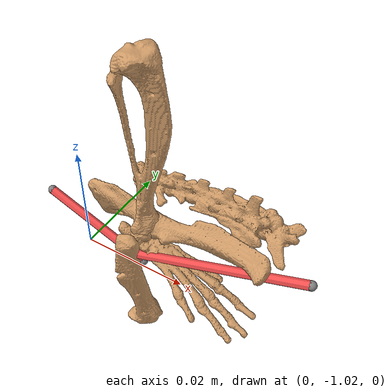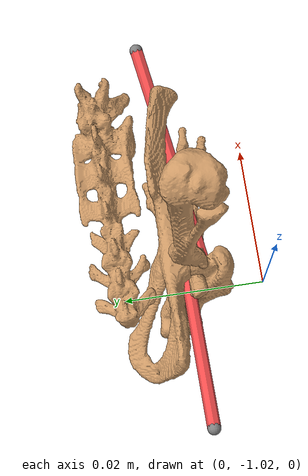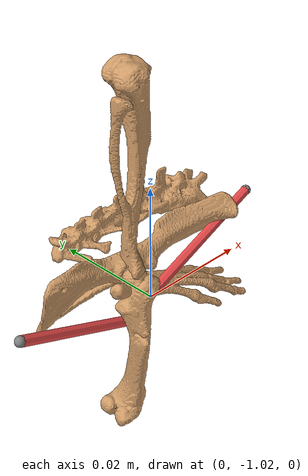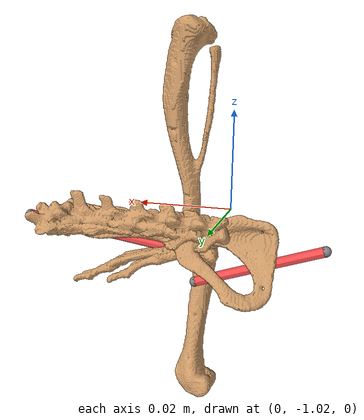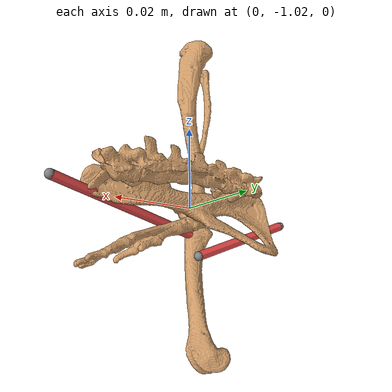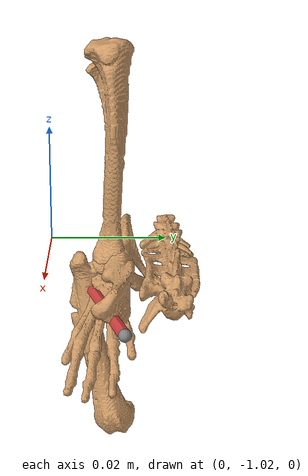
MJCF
<?xml version="1.0" encoding="utf-8"?>
<mujoco model="Rat Hindlimb Right">
  <compiler inertiafromgeom="auto" angle="radian" balanceinertia="true" boundmass="0.001" boundinertia="0.001">
    <lengthrange inttotal="50" useexisting="true"></lengthrange>
  </compiler>
  <default>
    <joint limited="true" damping="0.5" armature="0.1" stiffness="2"></joint>
    <geom rgba="0.8 0.6 .4 1" margin="0.001"></geom>
    <site size="0.001"></site>
    <tendon width="0.001" rgba=".95 .3 .3 1" limited="false"></tendon>
    <default class="muscle">
      <muscle ctrllimited="true" ctrlrange="0 1" ></muscle>
    </default>
    <default class="motor">
      <general gainprm="5 0 0 0 0 0 0 0 0 0"></general>
    </default>
  </default>
  <option timestep="0.000075"></option>
  <size njmax="1000" nconmax="400" nuser_jnt="1"></size>
  <worldbody>
    <camera name="fixed" pos="0.02 -1.2 -0.03" xyaxes="1 0 0 0 .1 1.1"/>
    <geom name="floor" pos="0 0 -0.5" size="10 10 0.125" type="plane" material="MatPlane" rgba="1 1 1 1" condim="3"></geom>
    <body name="spine" pos="       0       -1 6.12323e-17" quat="0.7071067811865475 0.7071067811865475 0.0 0.0">
      <light mode="trackcom" directional="false" pos="0 0 4.0" dir="0 0 -1"></light>
      <geom name="spine" type="mesh" mesh="spine"></geom>
      <inertial pos="       0        0        0" mass="0.12" fullinertia=" 4.8e-06  4.8e-06  4.8e-06        0        0        0"></inertial>
      <body name="pelvis" pos="   0.005   -0.003     0.01" quat="1.0 0.0 0.0 0.0">
        <geom name="pelvis" type="mesh" mesh="pelvis"></geom>
        <inertial pos="       0        0        0" mass="0.02" fullinertia="   4e-06  3.5e-06  3.5e-06        0        0        0"></inertial>

		<site name="Hip_Ext_Pelvis" pos="-0.024199251041167  -0.000933954385910  -0.000003638250253"></site>
        <site name="Hip_Flx_Pelvis" pos="0.034278843371281   0.001936363298852  -0.002889053521072"></site>

        <joint name="sacroiliac_flx" type="hinge" pos="0 0 0" axis="       0        0        1" limited="true" range="-0.0230125  -0.0230124" ref="0"></joint>
        <body name="femur" pos="       0        0        0" quat="1.0 0.0 0.0 0.0">
          <geom name="femur" type="mesh" mesh="femur"></geom>
          <inertial pos="       0   -0.015        0" mass="0.02" fullinertia="1.62e-06  2.5e-07 1.62e-06        0        0        0"></inertial>

		  <site name="Hip_Ext_Femur" pos="-0.000164061557790  -0.009744455046850   0.000155782949626"></site>
          <site name="Hip_Flx_Femur" pos="-0.000361799254514  -0.004927975980343   0.002877630717600"></site>

          <joint name="hip_flx" type="hinge" pos="0 0 0" axis="       0        0        -1" limited="true" range="-0.872665  1.22173" ref="0"></joint>

          <body name="tibia" pos="       0        0        0" quat="1.0 0.0 0.0 0.0">
            <geom name="tibia" type="mesh" mesh="tibia"></geom>
            <inertial pos="       0    0.015        0" mass="0.02" fullinertia="1.62e-06  2.5e-07 1.62e-06        0        0        0"></inertial>
			<joint name="knee_flx_translation3" type="slide" pos="0 0 0" axis="       0        0        1" limited="true" range="-0.00370751 -0.0037075" ref="0"></joint>
			<joint name="knee_flx_translation2" type="slide" pos="0 0 0" axis="       0        1        0" limited="true" range="-0.07131 -0.07130" ref="0"></joint>
			<joint name="knee_flx_translation1" type="slide" pos="0 0 0" axis="       1        0        0" limited="true" range="-0.00011 -0.0001" ref="0"></joint>
            <joint name="knee_flx" type="hinge" pos="-0.003 0.038 0" axis="       0        0        1" limited="true" range="-2.61799 -0.349066" ref="0"></joint>
            <joint name="knee_flx_rotation2" type="hinge" pos="0 0 0" axis="       1        0        0" limited="true" range="-0.087074 0.0644507" ref="0"></joint>
            <joint name="knee_flx_rotation3" type="hinge" pos="0 0 0" axis="       0        1        0" limited="true" range="0.261798 0.261799" ref="0"></joint>
            <body name="foot" pos="       0        0        0" quat="1.0 0.0 0.0 0.0">
              <geom name="foot" type="mesh" mesh="foot"></geom>
              <inertial pos="   0.007   -0.005        0" mass="0.02" fullinertia=" 2.5e-07 1.62e-06 1.62e-06        0        0        0"></inertial>
              <joint name="ankle_flx_translation3" type="slide" pos="0 0 0" axis="       0        0        1" limited="true" range="       0        0.00000001" ref="0"></joint>
              <joint name="ankle_flx_translation2" type="slide" pos="0 0 0" axis="       0        1        0" limited="true" range="       0        0.00000001" ref="0"></joint>
              <joint name="ankle_flx_translation1" type="slide" pos="0 0 0" axis="       1        0        0" limited="true" range="       0        0.00000001" ref="0"></joint>
              <joint name="ankle_flx" type="hinge" pos="0 0 0" axis="       0        0        1" limited="true" range="-0.523599   1.0472" ref="0"></joint>
              <joint name="ankle_add" type="hinge" pos="0 0 0" axis="       1        0        0" limited="true" range="-0.0872665 0.610865" ref="0"></joint>
              <joint name="ankle_int" type="hinge" pos="0 0 0" axis="       0        1        0" limited="true" range="-0.872665 0.261799" ref="0"></joint>
            </body>
          </body>
        </body>
      </body>
    </body>
    <camera name="for_testing" pos="0 0 0" euler="0 0 0"></camera>
  </worldbody>
  <asset>
    <mesh name="spine" file="Geometry/spine.stl" scale="       1        1        1"></mesh>
    <mesh name="pelvis" file="Geometry/pelvis.stl" scale="       1        1        1"></mesh>
    <mesh name="femur" file="Geometry/femur.stl" scale="       1        1        1"></mesh>
    <mesh name="tibia" file="Geometry/tibia.stl" scale="       1        1        1"></mesh>
    <mesh name="foot" file="Geometry/foot.stl" scale="       1        1        1"></mesh>
    <texture name="texplane" type="2d" builtin="checker" rgb1=".2 .3 .4" rgb2=".1 0.15 0.2" width="100" height="100"></texture>
    <material name="MatPlane" reflectance="0.0" texture="texplane" texrepeat="1 1" texuniform="true"></material>
    <texture type="skybox" builtin="gradient" rgb1="1 1 1" rgb2=".6 .8 1" width="256" height="256" />
  </asset>
  <tendon>
    <spatial name="Ext_tendon">
      <site site="Hip_Ext_Pelvis"></site>
      <site site="Hip_Ext_Femur"></site>
    </spatial>
    <spatial name="Flx_tendon">
      <site site="Hip_Flx_Pelvis"></site>
      <site site="Hip_Flx_Femur"></site>
    </spatial>
  </tendon>
  <actuator>
    <muscle name="Extensor" tendon="Ext_tendon" class="muscle"/>
    <muscle name="Flexor" tendon="Flx_tendon" class="muscle"/>
  </actuator>
  <equality>
    <joint name="sacroiliac_flx_constraint" active="false" joint1="sacroiliac_flx" polycoef="0.0645772        0        0        0        0"></joint>
    <joint name="knee_flx_translation3_constraint" active="false" joint1="knee_flx_translation3" joint2="knee_flx" polycoef="-0.0039476 2.93474e-05 0.0022295 0.00050098 1.14254e-08" solimp="0.9999 0.9999 0.001 0.5 2"></joint>
    <joint name="knee_flx_translation2_constraint" active="false" joint1="knee_flx_translation2" joint2="knee_flx" polycoef="-0.0716295 0.00263982 0.0274601 0.00665864 0.000226098" solimp="0.9999 0.9999 0.001 0.5 2"></joint>
    <joint name="knee_flx_translation1_constraint" active="false" joint1="knee_flx_translation1" joint2="knee_flx" polycoef="-0.000895537 0.0431518 0.00242887 -0.00708937 -0.00116912" solimp="0.9999 0.9999 0.001 0.5 2"></joint>
    <joint name="knee_flx_rotation2_constraint" active="true" joint1="knee_flx_rotation2" joint2="knee_flx" polycoef="0.0893452 0.0736091 0.00771735 0.00349496 0.00055574" solimp="0.9999 0.9999 0.001 0.5 2"></joint>
    <joint name="knee_flx_rotation3_constraint" active="true" joint1="knee_flx_rotation3" joint2="knee_flx" polycoef="0.261799 -2.3141e-15 -1.74501e-15 -5.89556e-16 -6.28369e-17" solimp="0.9999 0.9999 0.001 0.5 2"></joint>
    <joint name="ankle_flx_translation3_constraint" active="true" joint1="ankle_flx_translation3" joint2="ankle_flx" polycoef="       0        0        0        0        0" solimp="0.9999 0.9999 0.001 0.5 2"></joint>
    <joint name="ankle_flx_translation2_constraint" active="true" joint1="ankle_flx_translation2" joint2="ankle_flx" polycoef="       0        0        0        0        0" solimp="0.9999 0.9999 0.001 0.5 2"></joint>
    <joint name="ankle_flx_translation1_constraint" active="true" joint1="ankle_flx_translation1" joint2="ankle_flx" polycoef="       0        0        0        0        0" solimp="0.9999 0.9999 0.001 0.5 2"></joint>
    <weld name="origin_to_worldbody" body1="pelvis" active="true"></weld>
  </equality>
  <keyframe>
    <key time="0.0" qpos='-3.25839e-05 0.00202488 -0.00370786 -0.0694889 -0.0153676 -0.348793 0.0644695 0.261799 1.25344e-08 -1.43187e-07 1.1033e-08 -0.000490811 -7.1755e-05 -0.000100531'/>
  </keyframe>
</mujoco>
